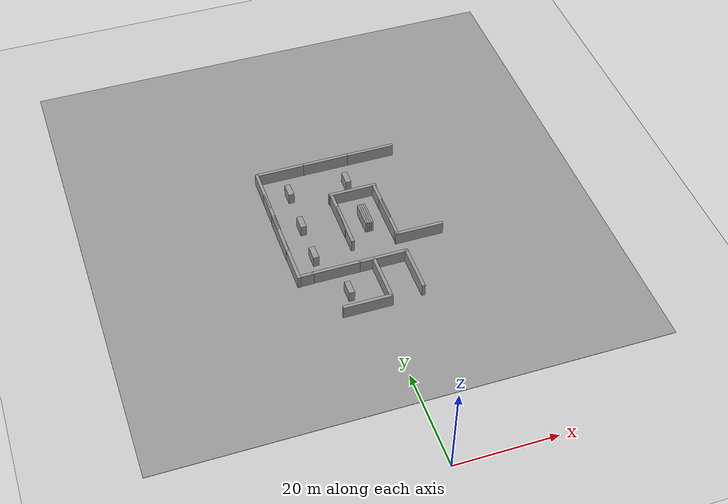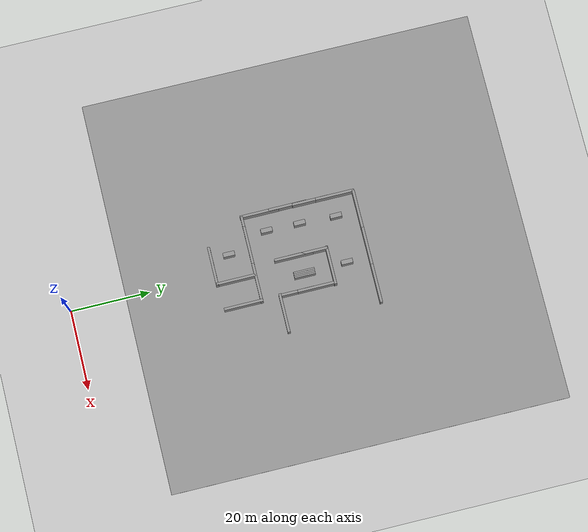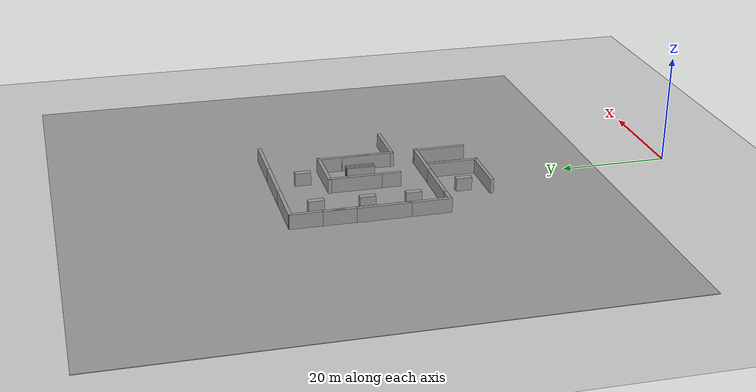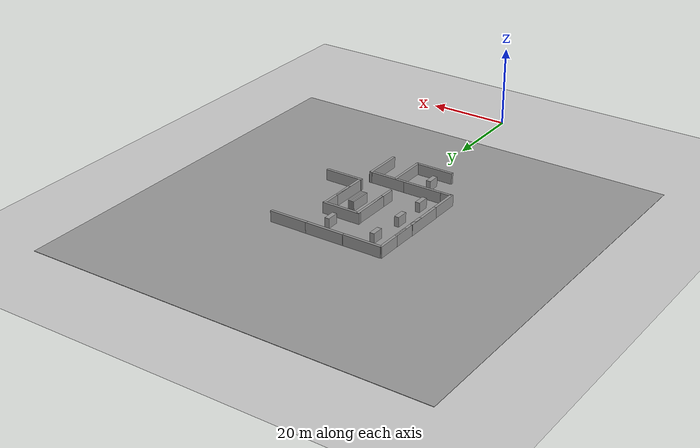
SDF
<sdf version="1.7">
 <world name="default">
  <model name="ground_plane">
   <static>1</static>
   <link name="link">
    <collision name="collision">
     <geometry><plane><normal>0 0 1</normal><size>100 100</size></plane></geometry>
     <surface><friction><ode><mu>100</mu><mu2>50</mu2></ode></friction></surface>
    </collision>
    <visual name="visual">
     <cast_shadows>0</cast_shadows>
     <geometry><plane><normal>0 0 1</normal><size>100 100</size></plane></geometry>
     <material>
      <script><uri>file://media/materials/scripts/gazebo.material</uri><name>Gazebo/Grey</name></script>
     </material>
    </visual>
   </link>
  </model>
  <model name="ground_plane_1">
   <static>1</static>
   <link name="link">
    <collision name="collision">
     <geometry><plane><normal>0 0 1</normal><size>100 100</size></plane></geometry>
     <surface>
      <contact><collide_bitmask>65535</collide_bitmask></contact>
      <friction><ode><mu>100</mu><mu2>50</mu2></ode></friction>
     </surface>
    </collision>
    <visual name="visual">
     <cast_shadows>0</cast_shadows>
     <geometry><plane><normal>0 0 1</normal><size>100 100</size></plane></geometry>
     <material>
      <script><uri>file://media/materials/scripts/gazebo.material</uri><name>Gazebo/Grey</name></script>
     </material>
    </visual>
   </link>
   <pose>-0.115157 63.9735 0 0 -0 0</pose>
  </model>
  <model name="grey_wall_hou_clone_clone_3_clone_0_clone_1_clone">
   <link name="link">
    <pose>0 0 1.37589 0 -0 0</pose>
    <inertial>
     <inertia><ixx>0</ixx><ixy>0</ixy><ixz>0</ixz><iyy>0</iyy><iyz>0</iyz><izz>0</izz></inertia>
     <mass>0</mass>
    </inertial>
    <visual name="visual">
     <cast_shadows>0</cast_shadows>
     <geometry><box><size>9.82221 0.642976 2.8</size></box></geometry>
     <material>
      <script>
       <uri>model://grey_wall/materials/scripts</uri>
       <uri>model://grey_wall/materials/textures</uri>
       <name>vrc/grey_wall</name>
      </script>
      <shader type="pixel"><normal_map>__default__</normal_map></shader>
      <ambient>1 1 1 1</ambient>
      <diffuse>1 1 1 1</diffuse>
      <specular>0 0 0 1</specular>
      <emissive>0 0 0 1</emissive>
     </material>
    </visual>
    <collision name="collision">
     <geometry><box><size>9.82221 0.642976 2.8</size></box></geometry>
     <surface>
      <friction>
       <ode><mu>1</mu><mu2>1</mu2><fdir1>0 0 0</fdir1><slip1>0</slip1><slip2>0</slip2></ode>
       <torsional>
        <coefficient>1</coefficient>
        <patch_radius>0</patch_radius>
        <surface_radius>0</surface_radius>
        <use_patch_radius>1</use_patch_radius>
        <ode><slip>0</slip></ode>
       </torsional>
      </friction>
      <bounce><restitution_coefficient>0</restitution_coefficient><threshold>1e+06</threshold></bounce>
      <contact>
       <collide_without_contact>0</collide_without_contact>
       <collide_without_contact_bitmask>1</collide_without_contact_bitmask>
       <collide_bitmask>1</collide_bitmask>
       <ode>
        <soft_cfm>0</soft_cfm>
        <soft_erp>0.2</soft_erp>
        <kp>1e+13</kp>
        <kd>1</kd>
        <max_vel>0.01</max_vel>
        <min_depth>0</min_depth>
       </ode>
       <bullet>
        <split_impulse>1</split_impulse>
        <split_impulse_penetration_threshold>-0.01</split_impulse_penetration_threshold>
        <soft_cfm>0</soft_cfm>
        <soft_erp>0.2</soft_erp>
        <kp>1e+13</kp>
        <kd>1</kd>
       </bullet>
      </contact>
     </surface>
    </collision>
   </link>
   <static>1</static>
   <pose>-0.06228 60.209 0 0 0 -1.56855</pose>
  </model>
  <model name="grey_wall_hou_clone_clone_0_clone_1">
   <link name="link">
    <pose>0 0 1.37589 0 -0 0</pose>
    <inertial>
     <inertia><ixx>0</ixx><ixy>0</ixy><ixz>0</ixz><iyy>0</iyy><iyz>0</iyz><izz>0</izz></inertia>
     <mass>0</mass>
    </inertial>
    <visual name="visual">
     <cast_shadows>0</cast_shadows>
     <geometry><box><size>9.82221 0.642976 2.8</size></box></geometry>
     <material>
      <script>
       <uri>model://grey_wall/materials/scripts</uri>
       <uri>model://grey_wall/materials/textures</uri>
       <name>vrc/grey_wall</name>
      </script>
      <shader type="pixel"><normal_map>__default__</normal_map></shader>
      <ambient>1 1 1 1</ambient>
      <diffuse>1 1 1 1</diffuse>
      <specular>0 0 0 1</specular>
      <emissive>0 0 0 1</emissive>
     </material>
    </visual>
    <collision name="collision">
     <geometry><box><size>9.82221 0.642976 2.8</size></box></geometry>
     <surface>
      <friction>
       <ode><mu>1</mu><mu2>1</mu2><fdir1>0 0 0</fdir1><slip1>0</slip1><slip2>0</slip2></ode>
       <torsional>
        <coefficient>1</coefficient>
        <patch_radius>0</patch_radius>
        <surface_radius>0</surface_radius>
        <use_patch_radius>1</use_patch_radius>
        <ode><slip>0</slip></ode>
       </torsional>
      </friction>
      <bounce><restitution_coefficient>0</restitution_coefficient><threshold>1e+06</threshold></bounce>
      <contact>
       <collide_without_contact>0</collide_without_contact>
       <collide_without_contact_bitmask>1</collide_without_contact_bitmask>
       <collide_bitmask>1</collide_bitmask>
       <ode>
        <soft_cfm>0</soft_cfm>
        <soft_erp>0.2</soft_erp>
        <kp>1e+13</kp>
        <kd>1</kd>
        <max_vel>0.01</max_vel>
        <min_depth>0</min_depth>
       </ode>
       <bullet>
        <split_impulse>1</split_impulse>
        <split_impulse_penetration_threshold>-0.01</split_impulse_penetration_threshold>
        <soft_cfm>0</soft_cfm>
        <soft_erp>0.2</soft_erp>
        <kp>1e+13</kp>
        <kd>1</kd>
       </bullet>
      </contact>
     </surface>
    </collision>
   </link>
   <static>1</static>
   <pose>8.93321 41.7664 0 0 0 -1.56855</pose>
  </model>
  <model name="grey_wall_hou_clone_clone_clone_4_clone_clone_clone">
   <link name="link">
    <pose>0 0 1.37589 0 -0 0</pose>
    <inertial>
     <inertia><ixx>0</ixx><ixy>0</ixy><ixz>0</ixz><iyy>0</iyy><iyz>0</iyz><izz>0</izz></inertia>
     <mass>0</mass>
    </inertial>
    <visual name="visual">
     <cast_shadows>0</cast_shadows>
     <geometry><box><size>9.82221 0.642976 2.8</size></box></geometry>
     <material>
      <script>
       <uri>model://grey_wall/materials/scripts</uri>
       <uri>model://grey_wall/materials/textures</uri>
       <name>vrc/grey_wall</name>
      </script>
      <shader type="pixel"><normal_map>__default__</normal_map></shader>
      <ambient>1 1 1 1</ambient>
      <diffuse>1 1 1 1</diffuse>
      <specular>0 0 0 1</specular>
      <emissive>0 0 0 1</emissive>
     </material>
    </visual>
    <collision name="collision">
     <geometry><box><size>9.82221 0.642976 2.8</size></box></geometry>
     <surface>
      <friction>
       <ode><mu>1</mu><mu2>1</mu2><fdir1>0 0 0</fdir1><slip1>0</slip1><slip2>0</slip2></ode>
       <torsional>
        <coefficient>1</coefficient>
        <patch_radius>0</patch_radius>
        <surface_radius>0</surface_radius>
        <use_patch_radius>1</use_patch_radius>
        <ode><slip>0</slip></ode>
       </torsional>
      </friction>
      <bounce><restitution_coefficient>0</restitution_coefficient><threshold>1e+06</threshold></bounce>
      <contact>
       <collide_without_contact>0</collide_without_contact>
       <collide_without_contact_bitmask>1</collide_without_contact_bitmask>
       <collide_bitmask>1</collide_bitmask>
       <ode>
        <soft_cfm>0</soft_cfm>
        <soft_erp>0.2</soft_erp>
        <kp>1e+13</kp>
        <kd>1</kd>
        <max_vel>0.01</max_vel>
        <min_depth>0</min_depth>
       </ode>
       <bullet>
        <split_impulse>1</split_impulse>
        <split_impulse_penetration_threshold>-0.01</split_impulse_penetration_threshold>
        <soft_cfm>0</soft_cfm>
        <soft_erp>0.2</soft_erp>
        <kp>1e+13</kp>
        <kd>1</kd>
       </bullet>
      </contact>
     </surface>
    </collision>
   </link>
   <static>1</static>
   <pose>4.39249 46.339 0 0 -0 0</pose>
  </model>
  <model name="grey_wall_hou_clone_clone_clone_4_clone_clone_clone_0">
   <link name="link">
    <pose>0 0 1.37589 0 -0 0</pose>
    <inertial>
     <inertia><ixx>0</ixx><ixy>0</ixy><ixz>0</ixz><iyy>0</iyy><iyz>0</iyz><izz>0</izz></inertia>
     <mass>0</mass>
    </inertial>
    <visual name="visual">
     <cast_shadows>0</cast_shadows>
     <geometry><box><size>9.82221 0.642976 2.8</size></box></geometry>
     <material>
      <script>
       <uri>model://grey_wall/materials/scripts</uri>
       <uri>model://grey_wall/materials/textures</uri>
       <name>vrc/grey_wall</name>
      </script>
      <shader type="pixel"><normal_map>__default__</normal_map></shader>
      <ambient>1 1 1 1</ambient>
      <diffuse>1 1 1 1</diffuse>
      <specular>0 0 0 1</specular>
      <emissive>0 0 0 1</emissive>
     </material>
    </visual>
    <collision name="collision">
     <geometry><box><size>9.82221 0.642976 2.8</size></box></geometry>
     <surface>
      <friction>
       <ode><mu>1</mu><mu2>1</mu2><fdir1>0 0 0</fdir1><slip1>0</slip1><slip2>0</slip2></ode>
       <torsional>
        <coefficient>1</coefficient>
        <patch_radius>0</patch_radius>
        <surface_radius>0</surface_radius>
        <use_patch_radius>1</use_patch_radius>
        <ode><slip>0</slip></ode>
       </torsional>
      </friction>
      <bounce><restitution_coefficient>0</restitution_coefficient><threshold>1e+06</threshold></bounce>
      <contact>
       <collide_without_contact>0</collide_without_contact>
       <collide_without_contact_bitmask>1</collide_without_contact_bitmask>
       <collide_bitmask>1</collide_bitmask>
       <ode>
        <soft_cfm>0</soft_cfm>
        <soft_erp>0.2</soft_erp>
        <kp>1e+13</kp>
        <kd>1</kd>
        <max_vel>0.01</max_vel>
        <min_depth>0</min_depth>
       </ode>
       <bullet>
        <split_impulse>1</split_impulse>
        <split_impulse_penetration_threshold>-0.01</split_impulse_penetration_threshold>
        <soft_cfm>0</soft_cfm>
        <soft_erp>0.2</soft_erp>
        <kp>1e+13</kp>
        <kd>1</kd>
       </bullet>
      </contact>
     </surface>
    </collision>
   </link>
   <static>1</static>
   <pose>-7.74432 74.7859 0 0 -0 0</pose>
  </model>
  <model name="grey_wall_hou_clone_clone_clone_4_clone_clone_0_clone_3_clone">
   <link name="link">
    <pose>0 0 1.37589 0 -0 0</pose>
    <inertial>
     <inertia><ixx>0</ixx><ixy>0</ixy><ixz>0</ixz><iyy>0</iyy><iyz>0</iyz><izz>0</izz></inertia>
     <mass>0</mass>
    </inertial>
    <visual name="visual">
     <cast_shadows>0</cast_shadows>
     <geometry><box><size>9.82221 0.642976 2.8</size></box></geometry>
     <material>
      <script>
       <uri>model://grey_wall/materials/scripts</uri>
       <uri>model://grey_wall/materials/textures</uri>
       <name>vrc/grey_wall</name>
      </script>
      <shader type="pixel"><normal_map>__default__</normal_map></shader>
      <ambient>1 1 1 1</ambient>
      <diffuse>1 1 1 1</diffuse>
      <specular>0 0 0 1</specular>
      <emissive>0 0 0 1</emissive>
     </material>
    </visual>
    <collision name="collision">
     <geometry><box><size>9.82221 0.642976 2.8</size></box></geometry>
     <surface>
      <friction>
       <ode><mu>1</mu><mu2>1</mu2><fdir1>0 0 0</fdir1><slip1>0</slip1><slip2>0</slip2></ode>
       <torsional>
        <coefficient>1</coefficient>
        <patch_radius>0</patch_radius>
        <surface_radius>0</surface_radius>
        <use_patch_radius>1</use_patch_radius>
        <ode><slip>0</slip></ode>
       </torsional>
      </friction>
      <bounce><restitution_coefficient>0</restitution_coefficient><threshold>1e+06</threshold></bounce>
      <contact>
       <collide_without_contact>0</collide_without_contact>
       <collide_without_contact_bitmask>1</collide_without_contact_bitmask>
       <collide_bitmask>1</collide_bitmask>
       <ode>
        <soft_cfm>0</soft_cfm>
        <soft_erp>0.2</soft_erp>
        <kp>1e+13</kp>
        <kd>1</kd>
        <max_vel>0.01</max_vel>
        <min_depth>0</min_depth>
       </ode>
       <bullet>
        <split_impulse>1</split_impulse>
        <split_impulse_penetration_threshold>-0.01</split_impulse_penetration_threshold>
        <soft_cfm>0</soft_cfm>
        <soft_erp>0.2</soft_erp>
        <kp>1e+13</kp>
        <kd>1</kd>
       </bullet>
      </contact>
     </surface>
    </collision>
   </link>
   <static>1</static>
   <pose>-5.13766 46.3635 0 0 -0 0</pose>
  </model>
  <model name="grey_wall_hou_clone_clone_3_clone_5_clone">
   <link name="link">
    <pose>0 0 1.37589 0 -0 0</pose>
    <inertial>
     <inertia><ixx>0</ixx><ixy>0</ixy><ixz>0</ixz><iyy>0</iyy><iyz>0</iyz><izz>0</izz></inertia>
     <mass>0</mass>
    </inertial>
    <visual name="visual">
     <cast_shadows>0</cast_shadows>
     <geometry><box><size>9.82221 0.642976 2.8</size></box></geometry>
     <material>
      <script>
       <uri>model://grey_wall/materials/scripts</uri>
       <uri>model://grey_wall/materials/textures</uri>
       <name>vrc/grey_wall</name>
      </script>
      <shader type="pixel"><normal_map>__default__</normal_map></shader>
      <ambient>1 1 1 1</ambient>
      <diffuse>1 1 1 1</diffuse>
      <specular>0 0 0 1</specular>
      <emissive>0 0 0 1</emissive>
     </material>
    </visual>
    <collision name="collision">
     <geometry><box><size>9.82221 0.642976 2.8</size></box></geometry>
     <surface>
      <friction>
       <ode><mu>1</mu><mu2>1</mu2><fdir1>0 0 0</fdir1><slip1>0</slip1><slip2>0</slip2></ode>
       <torsional>
        <coefficient>1</coefficient>
        <patch_radius>0</patch_radius>
        <surface_radius>0</surface_radius>
        <use_patch_radius>1</use_patch_radius>
        <ode><slip>0</slip></ode>
       </torsional>
      </friction>
      <bounce><restitution_coefficient>0</restitution_coefficient><threshold>1e+06</threshold></bounce>
      <contact>
       <collide_without_contact>0</collide_without_contact>
       <collide_without_contact_bitmask>1</collide_without_contact_bitmask>
       <collide_bitmask>1</collide_bitmask>
       <ode>
        <soft_cfm>0</soft_cfm>
        <soft_erp>0.2</soft_erp>
        <kp>1e+13</kp>
        <kd>1</kd>
        <max_vel>0.01</max_vel>
        <min_depth>0</min_depth>
       </ode>
       <bullet>
        <split_impulse>1</split_impulse>
        <split_impulse_penetration_threshold>-0.01</split_impulse_penetration_threshold>
        <soft_cfm>0</soft_cfm>
        <soft_erp>0.2</soft_erp>
        <kp>1e+13</kp>
        <kd>1</kd>
       </bullet>
      </contact>
     </surface>
    </collision>
   </link>
   <static>1</static>
   <pose>2.36653 41.3889 0 0 0 -1.56855</pose>
  </model>
  <model name="unit_box_clone_2_clone_0_clone_1_clone_3">
   <pose>-4.29083 41.1362 1.23849 1e-06 -1e-06 -0.000555</pose>
   <link name="link">
    <inertial>
     <mass>1</mass>
     <inertia>
      <ixx>0.166667</ixx>
      <ixy>0</ixy>
      <ixz>0</ixz>
      <iyy>0.166667</iyy>
      <iyz>0</iyz>
      <izz>0.166667</izz>
     </inertia>
    </inertial>
    <collision name="collision"><geometry><box><size>1.12952 2.91492 2.47699</size></box></geometry></collision>
    <visual name="visual">
     <geometry><box><size>1.12952 2.91492 2.47699</size></box></geometry>
     <material>
      <script><name>Gazebo/Grey</name><uri>file://media/materials/scripts/gazebo.material</uri></script>
     </material>
    </visual>
   </link>
  </model>
  <model name="grey_wall_hou_clone_clone_3_clone_0_clone_1_clone_0_clone_0">
   <link name="link">
    <pose>0 0 1.37589 0 -0 0</pose>
    <inertial>
     <inertia><ixx>0</ixx><ixy>0</ixy><ixz>0</ixz><iyy>0</iyy><iyz>0</iyz><izz>0</izz></inertia>
     <mass>0</mass>
    </inertial>
    <visual name="visual">
     <cast_shadows>0</cast_shadows>
     <geometry><box><size>9.82221 0.642976 2.8</size></box></geometry>
     <material>
      <script>
       <uri>model://grey_wall/materials/scripts</uri>
       <uri>model://grey_wall/materials/textures</uri>
       <name>vrc/grey_wall</name>
      </script>
      <shader type="pixel"><normal_map>__default__</normal_map></shader>
      <ambient>1 1 1 1</ambient>
      <diffuse>1 1 1 1</diffuse>
      <specular>0 0 0 1</specular>
      <emissive>0 0 0 1</emissive>
     </material>
    </visual>
    <collision name="collision">
     <geometry><box><size>9.82221 0.642976 2.8</size></box></geometry>
     <surface>
      <friction>
       <ode><mu>1</mu><mu2>1</mu2><fdir1>0 0 0</fdir1><slip1>0</slip1><slip2>0</slip2></ode>
       <torsional>
        <coefficient>1</coefficient>
        <patch_radius>0</patch_radius>
        <surface_radius>0</surface_radius>
        <use_patch_radius>1</use_patch_radius>
        <ode><slip>0</slip></ode>
       </torsional>
      </friction>
      <bounce><restitution_coefficient>0</restitution_coefficient><threshold>1e+06</threshold></bounce>
      <contact>
       <collide_without_contact>0</collide_without_contact>
       <collide_without_contact_bitmask>1</collide_without_contact_bitmask>
       <collide_bitmask>1</collide_bitmask>
       <ode>
        <soft_cfm>0</soft_cfm>
        <soft_erp>0.2</soft_erp>
        <kp>1e+13</kp>
        <kd>1</kd>
        <max_vel>0.01</max_vel>
        <min_depth>0</min_depth>
       </ode>
       <bullet>
        <split_impulse>1</split_impulse>
        <split_impulse_penetration_threshold>-0.01</split_impulse_penetration_threshold>
        <soft_cfm>0</soft_cfm>
        <soft_erp>0.2</soft_erp>
        <kp>1e+13</kp>
        <kd>1</kd>
       </bullet>
      </contact>
     </surface>
    </collision>
   </link>
   <static>1</static>
   <pose>-12.6279 64.1583 0 0 0 -1.56855</pose>
  </model>
  <model name="grey_wall_hou_clone_clone_3_clone_0_clone_1_clone_0_clone_1">
   <link name="link">
    <pose>0 0 1.37589 0 -0 0</pose>
    <inertial>
     <inertia><ixx>0</ixx><ixy>0</ixy><ixz>0</ixz><iyy>0</iyy><iyz>0</iyz><izz>0</izz></inertia>
     <mass>0</mass>
    </inertial>
    <visual name="visual">
     <cast_shadows>0</cast_shadows>
     <geometry><box><size>9.82221 0.642976 2.8</size></box></geometry>
     <material>
      <script>
       <uri>model://grey_wall/materials/scripts</uri>
       <uri>model://grey_wall/materials/textures</uri>
       <name>vrc/grey_wall</name>
      </script>
      <shader type="pixel"><normal_map>__default__</normal_map></shader>
      <ambient>1 1 1 1</ambient>
      <diffuse>1 1 1 1</diffuse>
      <specular>0 0 0 1</specular>
      <emissive>0 0 0 1</emissive>
     </material>
    </visual>
    <collision name="collision">
     <geometry><box><size>9.82221 0.642976 2.8</size></box></geometry>
     <surface>
      <friction>
       <ode><mu>1</mu><mu2>1</mu2><fdir1>0 0 0</fdir1><slip1>0</slip1><slip2>0</slip2></ode>
       <torsional>
        <coefficient>1</coefficient>
        <patch_radius>0</patch_radius>
        <surface_radius>0</surface_radius>
        <use_patch_radius>1</use_patch_radius>
        <ode><slip>0</slip></ode>
       </torsional>
      </friction>
      <bounce><restitution_coefficient>0</restitution_coefficient><threshold>1e+06</threshold></bounce>
      <contact>
       <collide_without_contact>0</collide_without_contact>
       <collide_without_contact_bitmask>1</collide_without_contact_bitmask>
       <collide_bitmask>1</collide_bitmask>
       <ode>
        <soft_cfm>0</soft_cfm>
        <soft_erp>0.2</soft_erp>
        <kp>1e+13</kp>
        <kd>1</kd>
        <max_vel>0.01</max_vel>
        <min_depth>0</min_depth>
       </ode>
       <bullet>
        <split_impulse>1</split_impulse>
        <split_impulse_penetration_threshold>-0.01</split_impulse_penetration_threshold>
        <soft_cfm>0</soft_cfm>
        <soft_erp>0.2</soft_erp>
        <kp>1e+13</kp>
        <kd>1</kd>
       </bullet>
      </contact>
     </surface>
    </collision>
   </link>
   <static>1</static>
   <pose>-12.6258 70.0961 0 0 0 -1.56855</pose>
  </model>
  <model name="grey_wall_hou_clone_clone_3_clone_0_clone_1_clone_0_clone_2">
   <link name="link">
    <pose>0 0 1.37589 0 -0 0</pose>
    <inertial>
     <inertia><ixx>0</ixx><ixy>0</ixy><ixz>0</ixz><iyy>0</iyy><iyz>0</iyz><izz>0</izz></inertia>
     <mass>0</mass>
    </inertial>
    <visual name="visual">
     <cast_shadows>0</cast_shadows>
     <geometry><box><size>9.82221 0.642976 2.8</size></box></geometry>
     <material>
      <script>
       <uri>model://grey_wall/materials/scripts</uri>
       <uri>model://grey_wall/materials/textures</uri>
       <name>vrc/grey_wall</name>
      </script>
      <shader type="pixel"><normal_map>__default__</normal_map></shader>
      <ambient>1 1 1 1</ambient>
      <diffuse>1 1 1 1</diffuse>
      <specular>0 0 0 1</specular>
      <emissive>0 0 0 1</emissive>
     </material>
    </visual>
    <collision name="collision">
     <geometry><box><size>9.82221 0.642976 2.8</size></box></geometry>
     <surface>
      <friction>
       <ode><mu>1</mu><mu2>1</mu2><fdir1>0 0 0</fdir1><slip1>0</slip1><slip2>0</slip2></ode>
       <torsional>
        <coefficient>1</coefficient>
        <patch_radius>0</patch_radius>
        <surface_radius>0</surface_radius>
        <use_patch_radius>1</use_patch_radius>
        <ode><slip>0</slip></ode>
       </torsional>
      </friction>
      <bounce><restitution_coefficient>0</restitution_coefficient><threshold>1e+06</threshold></bounce>
      <contact>
       <collide_without_contact>0</collide_without_contact>
       <collide_without_contact_bitmask>1</collide_without_contact_bitmask>
       <collide_bitmask>1</collide_bitmask>
       <ode>
        <soft_cfm>0</soft_cfm>
        <soft_erp>0.2</soft_erp>
        <kp>1e+13</kp>
        <kd>1</kd>
        <max_vel>0.01</max_vel>
        <min_depth>0</min_depth>
       </ode>
       <bullet>
        <split_impulse>1</split_impulse>
        <split_impulse_penetration_threshold>-0.01</split_impulse_penetration_threshold>
        <soft_cfm>0</soft_cfm>
        <soft_erp>0.2</soft_erp>
        <kp>1e+13</kp>
        <kd>1</kd>
       </bullet>
      </contact>
     </surface>
    </collision>
   </link>
   <static>1</static>
   <pose>8.83379 60.3561 0 0 0 -1.56855</pose>
  </model>
  <model name="grey_wall_hou_clone_clone_3_clone_0_clone_1_clone_0_clone_3">
   <link name="link">
    <pose>0 0 1.37589 0 -0 0</pose>
    <inertial>
     <inertia><ixx>0</ixx><ixy>0</ixy><ixz>0</ixz><iyy>0</iyy><iyz>0</iyz><izz>0</izz></inertia>
     <mass>0</mass>
    </inertial>
    <visual name="visual">
     <cast_shadows>0</cast_shadows>
     <geometry><box><size>9.82221 0.642976 2.8</size></box></geometry>
     <material>
      <script>
       <uri>model://grey_wall/materials/scripts</uri>
       <uri>model://grey_wall/materials/textures</uri>
       <name>vrc/grey_wall</name>
      </script>
      <shader type="pixel"><normal_map>__default__</normal_map></shader>
      <ambient>1 1 1 1</ambient>
      <diffuse>1 1 1 1</diffuse>
      <specular>0 0 0 1</specular>
      <emissive>0 0 0 1</emissive>
     </material>
    </visual>
    <collision name="collision">
     <geometry><box><size>9.82221 0.642976 2.8</size></box></geometry>
     <surface>
      <friction>
       <ode><mu>1</mu><mu2>1</mu2><fdir1>0 0 0</fdir1><slip1>0</slip1><slip2>0</slip2></ode>
       <torsional>
        <coefficient>1</coefficient>
        <patch_radius>0</patch_radius>
        <surface_radius>0</surface_radius>
        <use_patch_radius>1</use_patch_radius>
        <ode><slip>0</slip></ode>
       </torsional>
      </friction>
      <bounce><restitution_coefficient>0</restitution_coefficient><threshold>1e+06</threshold></bounce>
      <contact>
       <collide_without_contact>0</collide_without_contact>
       <collide_without_contact_bitmask>1</collide_without_contact_bitmask>
       <collide_bitmask>1</collide_bitmask>
       <ode>
        <soft_cfm>0</soft_cfm>
        <soft_erp>0.2</soft_erp>
        <kp>1e+13</kp>
        <kd>1</kd>
        <max_vel>0.01</max_vel>
        <min_depth>0</min_depth>
       </ode>
       <bullet>
        <split_impulse>1</split_impulse>
        <split_impulse_penetration_threshold>-0.01</split_impulse_penetration_threshold>
        <soft_cfm>0</soft_cfm>
        <soft_erp>0.2</soft_erp>
        <kp>1e+13</kp>
        <kd>1</kd>
       </bullet>
      </contact>
     </surface>
    </collision>
   </link>
   <static>1</static>
   <pose>-12.6316 50.8458 0 0 0 -1.56855</pose>
  </model>
  <model name="grey_wall_hou_clone_clone_clone_4_clone_clone_clone_0_clone_0">
   <link name="link">
    <pose>0 0 1.37589 0 -0 0</pose>
    <inertial>
     <inertia><ixx>0</ixx><ixy>0</ixy><ixz>0</ixz><iyy>0</iyy><iyz>0</iyz><izz>0</izz></inertia>
     <mass>0</mass>
    </inertial>
    <visual name="visual">
     <cast_shadows>0</cast_shadows>
     <geometry><box><size>9.82221 0.642976 2.8</size></box></geometry>
     <material>
      <script>
       <uri>model://grey_wall/materials/scripts</uri>
       <uri>model://grey_wall/materials/textures</uri>
       <name>vrc/grey_wall</name>
      </script>
      <shader type="pixel"><normal_map>__default__</normal_map></shader>
      <ambient>1 1 1 1</ambient>
      <diffuse>1 1 1 1</diffuse>
      <specular>0 0 0 1</specular>
      <emissive>0 0 0 1</emissive>
     </material>
    </visual>
    <collision name="collision">
     <geometry><box><size>9.82221 0.642976 2.8</size></box></geometry>
     <surface>
      <friction>
       <ode><mu>1</mu><mu2>1</mu2><fdir1>0 0 0</fdir1><slip1>0</slip1><slip2>0</slip2></ode>
       <torsional>
        <coefficient>1</coefficient>
        <patch_radius>0</patch_radius>
        <surface_radius>0</surface_radius>
        <use_patch_radius>1</use_patch_radius>
        <ode><slip>0</slip></ode>
       </torsional>
      </friction>
      <bounce><restitution_coefficient>0</restitution_coefficient><threshold>1e+06</threshold></bounce>
      <contact>
       <collide_without_contact>0</collide_without_contact>
       <collide_without_contact_bitmask>1</collide_without_contact_bitmask>
       <collide_bitmask>1</collide_bitmask>
       <ode>
        <soft_cfm>0</soft_cfm>
        <soft_erp>0.2</soft_erp>
        <kp>1e+13</kp>
        <kd>1</kd>
        <max_vel>0.01</max_vel>
        <min_depth>0</min_depth>
       </ode>
       <bullet>
        <split_impulse>1</split_impulse>
        <split_impulse_penetration_threshold>-0.01</split_impulse_penetration_threshold>
        <soft_cfm>0</soft_cfm>
        <soft_erp>0.2</soft_erp>
        <kp>1e+13</kp>
        <kd>1</kd>
       </bullet>
      </contact>
     </surface>
    </collision>
   </link>
   <static>1</static>
   <pose>1.94759 74.8061 0 0 -0 0</pose>
  </model>
  <model name="grey_wall_hou_clone_clone_clone_4_clone_clone_clone_0_clone_1">
   <link name="link">
    <pose>0 0 1.37589 0 -0 0</pose>
    <inertial>
     <inertia><ixx>0</ixx><ixy>0</ixy><ixz>0</ixz><iyy>0</iyy><iyz>0</iyz><izz>0</izz></inertia>
     <mass>0</mass>
    </inertial>
    <visual name="visual">
     <cast_shadows>0</cast_shadows>
     <geometry><box><size>9.82221 0.642976 2.8</size></box></geometry>
     <material>
      <script>
       <uri>model://grey_wall/materials/scripts</uri>
       <uri>model://grey_wall/materials/textures</uri>
       <name>vrc/grey_wall</name>
      </script>
      <shader type="pixel"><normal_map>__default__</normal_map></shader>
      <ambient>1 1 1 1</ambient>
      <diffuse>1 1 1 1</diffuse>
      <specular>0 0 0 1</specular>
      <emissive>0 0 0 1</emissive>
     </material>
    </visual>
    <collision name="collision">
     <geometry><box><size>9.82221 0.642976 2.8</size></box></geometry>
     <surface>
      <friction>
       <ode><mu>1</mu><mu2>1</mu2><fdir1>0 0 0</fdir1><slip1>0</slip1><slip2>0</slip2></ode>
       <torsional>
        <coefficient>1</coefficient>
        <patch_radius>0</patch_radius>
        <surface_radius>0</surface_radius>
        <use_patch_radius>1</use_patch_radius>
        <ode><slip>0</slip></ode>
       </torsional>
      </friction>
      <bounce><restitution_coefficient>0</restitution_coefficient><threshold>1e+06</threshold></bounce>
      <contact>
       <collide_without_contact>0</collide_without_contact>
       <collide_without_contact_bitmask>1</collide_without_contact_bitmask>
       <collide_bitmask>1</collide_bitmask>
       <ode>
        <soft_cfm>0</soft_cfm>
        <soft_erp>0.2</soft_erp>
        <kp>1e+13</kp>
        <kd>1</kd>
        <max_vel>0.01</max_vel>
        <min_depth>0</min_depth>
       </ode>
       <bullet>
        <split_impulse>1</split_impulse>
        <split_impulse_penetration_threshold>-0.01</split_impulse_penetration_threshold>
        <soft_cfm>0</soft_cfm>
        <soft_erp>0.2</soft_erp>
        <kp>1e+13</kp>
        <kd>1</kd>
       </bullet>
      </contact>
     </surface>
    </collision>
   </link>
   <static>1</static>
   <pose>11.4874 74.8034 0 0 -0 0</pose>
  </model>
  <model name="grey_wall_hou_clone_clone_clone_4_clone_clone_clone_0_clone_2">
   <link name="link">
    <pose>0 0 1.37589 0 -0 0</pose>
    <inertial>
     <inertia><ixx>0</ixx><ixy>0</ixy><ixz>0</ixz><iyy>0</iyy><iyz>0</iyz><izz>0</izz></inertia>
     <mass>0</mass>
    </inertial>
    <visual name="visual">
     <cast_shadows>0</cast_shadows>
     <geometry><box><size>9.82221 0.642976 2.8</size></box></geometry>
     <material>
      <script>
       <uri>model://grey_wall/materials/scripts</uri>
       <uri>model://grey_wall/materials/textures</uri>
       <name>vrc/grey_wall</name>
      </script>
      <shader type="pixel"><normal_map>__default__</normal_map></shader>
      <ambient>1 1 1 1</ambient>
      <diffuse>1 1 1 1</diffuse>
      <specular>0 0 0 1</specular>
      <emissive>0 0 0 1</emissive>
     </material>
    </visual>
    <collision name="collision">
     <geometry><box><size>9.82221 0.642976 2.8</size></box></geometry>
     <surface>
      <friction>
       <ode><mu>1</mu><mu2>1</mu2><fdir1>0 0 0</fdir1><slip1>0</slip1><slip2>0</slip2></ode>
       <torsional>
        <coefficient>1</coefficient>
        <patch_radius>0</patch_radius>
        <surface_radius>0</surface_radius>
        <use_patch_radius>1</use_patch_radius>
        <ode><slip>0</slip></ode>
       </torsional>
      </friction>
      <bounce><restitution_coefficient>0</restitution_coefficient><threshold>1e+06</threshold></bounce>
      <contact>
       <collide_without_contact>0</collide_without_contact>
       <collide_without_contact_bitmask>1</collide_without_contact_bitmask>
       <collide_bitmask>1</collide_bitmask>
       <ode>
        <soft_cfm>0</soft_cfm>
        <soft_erp>0.2</soft_erp>
        <kp>1e+13</kp>
        <kd>1</kd>
        <max_vel>0.01</max_vel>
        <min_depth>0</min_depth>
       </ode>
       <bullet>
        <split_impulse>1</split_impulse>
        <split_impulse_penetration_threshold>-0.01</split_impulse_penetration_threshold>
        <soft_cfm>0</soft_cfm>
        <soft_erp>0.2</soft_erp>
        <kp>1e+13</kp>
        <kd>1</kd>
       </bullet>
      </contact>
     </surface>
    </collision>
   </link>
   <static>1</static>
   <pose>4.39315 64.9818 0 0 -0 0</pose>
  </model>
  <model name="grey_wall_hou_clone_clone_clone_4_clone_clone_clone_clone_1_clone">
   <link name="link">
    <pose>0 0 1.37589 0 -0 0</pose>
    <inertial>
     <inertia><ixx>0</ixx><ixy>0</ixy><ixz>0</ixz><iyy>0</iyy><iyz>0</iyz><izz>0</izz></inertia>
     <mass>0</mass>
    </inertial>
    <visual name="visual">
     <cast_shadows>0</cast_shadows>
     <geometry><box><size>9.82221 0.642976 2.8</size></box></geometry>
     <material>
      <script>
       <uri>model://grey_wall/materials/scripts</uri>
       <uri>model://grey_wall/materials/textures</uri>
       <name>vrc/grey_wall</name>
      </script>
      <shader type="pixel"><normal_map>__default__</normal_map></shader>
      <ambient>1 1 1 1</ambient>
      <diffuse>1 1 1 1</diffuse>
      <specular>0 0 0 1</specular>
      <emissive>0 0 0 1</emissive>
     </material>
    </visual>
    <collision name="collision">
     <geometry><box><size>9.82221 0.642976 2.8</size></box></geometry>
     <surface>
      <friction>
       <ode><mu>1</mu><mu2>1</mu2><fdir1>0 0 0</fdir1><slip1>0</slip1><slip2>0</slip2></ode>
       <torsional>
        <coefficient>1</coefficient>
        <patch_radius>0</patch_radius>
        <surface_radius>0</surface_radius>
        <use_patch_radius>1</use_patch_radius>
        <ode><slip>0</slip></ode>
       </torsional>
      </friction>
      <bounce><restitution_coefficient>0</restitution_coefficient><threshold>1e+06</threshold></bounce>
      <contact>
       <collide_without_contact>0</collide_without_contact>
       <collide_without_contact_bitmask>1</collide_without_contact_bitmask>
       <collide_bitmask>1</collide_bitmask>
       <ode>
        <soft_cfm>0</soft_cfm>
        <soft_erp>0.2</soft_erp>
        <kp>1e+13</kp>
        <kd>1</kd>
        <max_vel>0.01</max_vel>
        <min_depth>0</min_depth>
       </ode>
       <bullet>
        <split_impulse>1</split_impulse>
        <split_impulse_penetration_threshold>-0.01</split_impulse_penetration_threshold>
        <soft_cfm>0</soft_cfm>
        <soft_erp>0.2</soft_erp>
        <kp>1e+13</kp>
        <kd>1</kd>
       </bullet>
      </contact>
     </surface>
    </collision>
   </link>
   <static>1</static>
   <pose>-2.18954 36.6329 0 0 -0 0</pose>
  </model>
  <model name="grey_wall_short_clone_clone">
   <link name="link">
    <pose>0 0 1.37589 0 -0 0</pose>
    <inertial>
     <inertia><ixx>0</ixx><ixy>0</ixy><ixz>0</ixz><iyy>0</iyy><iyz>0</iyz><izz>0</izz></inertia>
     <mass>0</mass>
    </inertial>
    <visual name="visual">
     <cast_shadows>0</cast_shadows>
     <geometry><box><size>3.01651 0.642976 2.8</size></box></geometry>
     <material>
      <script>
       <uri>model://grey_wall/materials/scripts</uri>
       <uri>model://grey_wall/materials/textures</uri>
       <name>vrc/grey_wall</name>
      </script>
      <shader type="pixel"><normal_map>__default__</normal_map></shader>
      <ambient>1 1 1 1</ambient>
      <diffuse>1 1 1 1</diffuse>
      <specular>0 0 0 1</specular>
      <emissive>0 0 0 1</emissive>
     </material>
    </visual>
    <collision name="collision">
     <geometry><box><size>3.01651 0.642976 2.8</size></box></geometry>
     <surface>
      <friction>
       <ode><mu>1</mu><mu2>1</mu2><fdir1>0 0 0</fdir1><slip1>0</slip1><slip2>0</slip2></ode>
       <torsional>
        <coefficient>1</coefficient>
        <patch_radius>0</patch_radius>
        <surface_radius>0</surface_radius>
        <use_patch_radius>1</use_patch_radius>
        <ode><slip>0</slip></ode>
       </torsional>
      </friction>
      <bounce><restitution_coefficient>0</restitution_coefficient><threshold>1e+06</threshold></bounce>
      <contact>
       <collide_without_contact>0</collide_without_contact>
       <collide_without_contact_bitmask>1</collide_without_contact_bitmask>
       <collide_bitmask>1</collide_bitmask>
       <ode>
        <soft_cfm>0</soft_cfm>
        <soft_erp>0.2</soft_erp>
        <kp>1e+13</kp>
        <kd>1</kd>
        <max_vel>0.01</max_vel>
        <min_depth>0</min_depth>
       </ode>
       <bullet>
        <split_impulse>1</split_impulse>
        <split_impulse_penetration_threshold>-0.01</split_impulse_penetration_threshold>
        <soft_cfm>0</soft_cfm>
        <soft_erp>0.2</soft_erp>
        <kp>1e+13</kp>
        <kd>1</kd>
       </bullet>
      </contact>
     </surface>
    </collision>
   </link>
   <static>1</static>
   <pose>-11.1512 46.3458 0 0 -0 0</pose>
  </model>
  <model name="unit_box_clone_2_clone_0_clone_1_clone_3_clone_0">
   <pose>-7.51486 69.1298 1.23849 -1e-06 -1e-06 0.00803</pose>
   <link name="link">
    <inertial>
     <mass>1</mass>
     <inertia>
      <ixx>0.166667</ixx>
      <ixy>0</ixy>
      <ixz>0</ixz>
      <iyy>0.166667</iyy>
      <iyz>0</iyz>
      <izz>0.166667</izz>
     </inertia>
    </inertial>
    <collision name="collision"><geometry><box><size>1.12952 2.91492 2.47699</size></box></geometry></collision>
    <visual name="visual">
     <geometry><box><size>1.12952 2.91492 2.47699</size></box></geometry>
     <material>
      <script><name>Gazebo/Grey</name><uri>file://media/materials/scripts/gazebo.material</uri></script>
     </material>
    </visual>
   </link>
  </model>
  <model name="unit_box_clone_2_clone_0_clone_1_clone_3_clone_1">
   <pose>-7.84064 59.9558 1.23849 -1e-06 -1e-06 0.002103</pose>
   <link name="link">
    <inertial>
     <mass>1</mass>
     <inertia>
      <ixx>0.166667</ixx>
      <ixy>0</ixy>
      <ixz>0</ixz>
      <iyy>0.166667</iyy>
      <iyz>0</iyz>
      <izz>0.166667</izz>
     </inertia>
    </inertial>
    <collision name="collision"><geometry><box><size>1.12952 2.91492 2.47699</size></box></geometry></collision>
    <visual name="visual">
     <geometry><box><size>1.12952 2.91492 2.47699</size></box></geometry>
     <material>
      <script><name>Gazebo/Grey</name><uri>file://media/materials/scripts/gazebo.material</uri></script>
     </material>
    </visual>
   </link>
  </model>
  <model name="unit_box_clone_2_clone_0_clone_1_clone_3_clone_2">
   <pose>-7.95802 51.5782 1.23849 1e-06 -1e-06 0.003618</pose>
   <link name="link">
    <inertial>
     <mass>1</mass>
     <inertia>
      <ixx>0.166667</ixx>
      <ixy>0</ixy>
      <ixz>0</ixz>
      <iyy>0.166667</iyy>
      <iyz>0</iyz>
      <izz>0.166667</izz>
     </inertia>
    </inertial>
    <collision name="collision"><geometry><box><size>1.12952 2.91492 2.47699</size></box></geometry></collision>
    <visual name="visual">
     <geometry><box><size>1.12952 2.91492 2.47699</size></box></geometry>
     <material>
      <script><name>Gazebo/Grey</name><uri>file://media/materials/scripts/gazebo.material</uri></script>
     </material>
    </visual>
   </link>
  </model>
  <model name="unit_box_clone_2_clone_0_clone_1_clone_3_clone_5">
   <pose>4.44406 69.01 1.23849 1e-06 -1e-06 -0.000557</pose>
   <link name="link">
    <inertial>
     <mass>1</mass>
     <inertia>
      <ixx>0.166667</ixx>
      <ixy>0</ixy>
      <ixz>0</ixz>
      <iyy>0.166667</iyy>
      <iyz>0</iyz>
      <izz>0.166667</izz>
     </inertia>
    </inertial>
    <collision name="collision"><geometry><box><size>1.12952 2.91492 2.47699</size></box></geometry></collision>
    <visual name="visual">
     <geometry><box><size>1.12952 2.91492 2.47699</size></box></geometry>
     <material>
      <script><name>Gazebo/Grey</name><uri>file://media/materials/scripts/gazebo.material</uri></script>
     </material>
    </visual>
   </link>
  </model>
  <model name="grey_wall_hou_clone_clone_3_clone_0_clone_1_clone_0_clone_2_clone">
   <link name="link">
    <pose>0 0 1.37589 0 -0 0</pose>
    <inertial>
     <inertia><ixx>0</ixx><ixy>0</ixy><ixz>0</ixz><iyy>0</iyy><iyz>0</iyz><izz>0</izz></inertia>
     <mass>0</mass>
    </inertial>
    <visual name="visual">
     <cast_shadows>0</cast_shadows>
     <geometry><box><size>9.82221 0.642976 2.8</size></box></geometry>
     <material>
      <script>
       <uri>model://grey_wall/materials/scripts</uri>
       <uri>model://grey_wall/materials/textures</uri>
       <name>vrc/grey_wall</name>
      </script>
      <shader type="pixel"><normal_map>__default__</normal_map></shader>
      <ambient>1 1 1 1</ambient>
      <diffuse>1 1 1 1</diffuse>
      <specular>0 0 0 1</specular>
      <emissive>0 0 0 1</emissive>
     </material>
    </visual>
    <collision name="collision">
     <geometry><box><size>9.82221 0.642976 2.8</size></box></geometry>
     <surface>
      <friction>
       <ode><mu>1</mu><mu2>1</mu2><fdir1>0 0 0</fdir1><slip1>0</slip1><slip2>0</slip2></ode>
       <torsional>
        <coefficient>1</coefficient>
        <patch_radius>0</patch_radius>
        <surface_radius>0</surface_radius>
        <use_patch_radius>1</use_patch_radius>
        <ode><slip>0</slip></ode>
       </torsional>
      </friction>
      <bounce><restitution_coefficient>0</restitution_coefficient><threshold>1e+06</threshold></bounce>
      <contact>
       <collide_without_contact>0</collide_without_contact>
       <collide_without_contact_bitmask>1</collide_without_contact_bitmask>
       <collide_bitmask>1</collide_bitmask>
       <ode>
        <soft_cfm>0</soft_cfm>
        <soft_erp>0.2</soft_erp>
        <kp>1e+13</kp>
        <kd>1</kd>
        <max_vel>0.01</max_vel>
        <min_depth>0</min_depth>
       </ode>
       <bullet>
        <split_impulse>1</split_impulse>
        <split_impulse_penetration_threshold>-0.01</split_impulse_penetration_threshold>
        <soft_cfm>0</soft_cfm>
        <soft_erp>0.2</soft_erp>
        <kp>1e+13</kp>
        <kd>1</kd>
       </bullet>
      </contact>
     </surface>
    </collision>
   </link>
   <static>1</static>
   <pose>8.83053 55.7325 0 0 0 -1.56855</pose>
  </model>
  <model name="grey_wall_hou_clone_clone_3_clone_0_clone_1_clone_0_clone_2_clone_0">
   <link name="link">
    <pose>0 0 1.37589 0 -0 0</pose>
    <inertial>
     <inertia><ixx>0</ixx><ixy>0</ixy><ixz>0</ixz><iyy>0</iyy><iyz>0</iyz><izz>0</izz></inertia>
     <mass>0</mass>
    </inertial>
    <visual name="visual">
     <cast_shadows>0</cast_shadows>
     <geometry><box><size>9.82221 0.642976 2.8</size></box></geometry>
     <material>
      <script>
       <uri>model://grey_wall/materials/scripts</uri>
       <uri>model://grey_wall/materials/textures</uri>
       <name>vrc/grey_wall</name>
      </script>
      <shader type="pixel"><normal_map>__default__</normal_map></shader>
      <ambient>1 1 1 1</ambient>
      <diffuse>1 1 1 1</diffuse>
      <specular>0 0 0 1</specular>
      <emissive>0 0 0 1</emissive>
     </material>
    </visual>
    <collision name="collision">
     <geometry><box><size>9.82221 0.642976 2.8</size></box></geometry>
     <surface>
      <friction>
       <ode><mu>1</mu><mu2>1</mu2><fdir1>0 0 0</fdir1><slip1>0</slip1><slip2>0</slip2></ode>
       <torsional>
        <coefficient>1</coefficient>
        <patch_radius>0</patch_radius>
        <surface_radius>0</surface_radius>
        <use_patch_radius>1</use_patch_radius>
        <ode><slip>0</slip></ode>
       </torsional>
      </friction>
      <bounce><restitution_coefficient>0</restitution_coefficient><threshold>1e+06</threshold></bounce>
      <contact>
       <collide_without_contact>0</collide_without_contact>
       <collide_without_contact_bitmask>1</collide_without_contact_bitmask>
       <collide_bitmask>1</collide_bitmask>
       <ode>
        <soft_cfm>0</soft_cfm>
        <soft_erp>0.2</soft_erp>
        <kp>1e+13</kp>
        <kd>1</kd>
        <max_vel>0.01</max_vel>
        <min_depth>0</min_depth>
       </ode>
       <bullet>
        <split_impulse>1</split_impulse>
        <split_impulse_penetration_threshold>-0.01</split_impulse_penetration_threshold>
        <soft_cfm>0</soft_cfm>
        <soft_erp>0.2</soft_erp>
        <kp>1e+13</kp>
        <kd>1</kd>
       </bullet>
      </contact>
     </surface>
    </collision>
   </link>
   <static>1</static>
   <pose>-0.03275 56.5977 0 0 0 -1.56855</pose>
  </model>
  <model name="grey_wall_hou_clone_clone_3_clone_0_clone_1_clone_0_clone_clone_0">
   <link name="link">
    <pose>0 0 1.37589 0 -0 0</pose>
    <inertial>
     <inertia><ixx>0</ixx><ixy>0</ixy><ixz>0</ixz><iyy>0</iyy><iyz>0</iyz><izz>0</izz></inertia>
     <mass>0</mass>
    </inertial>
    <visual name="visual">
     <cast_shadows>0</cast_shadows>
     <geometry><box><size>9.82221 0.642976 2.8</size></box></geometry>
     <material>
      <script>
       <uri>model://grey_wall/materials/scripts</uri>
       <uri>model://grey_wall/materials/textures</uri>
       <name>vrc/grey_wall</name>
      </script>
      <shader type="pixel"><normal_map>__default__</normal_map></shader>
      <ambient>1 1 1 1</ambient>
      <diffuse>1 1 1 1</diffuse>
      <specular>0 0 0 1</specular>
      <emissive>0 0 0 1</emissive>
     </material>
    </visual>
    <collision name="collision">
     <geometry><box><size>9.82221 0.642976 2.8</size></box></geometry>
     <surface>
      <friction>
       <ode><mu>1</mu><mu2>1</mu2><fdir1>0 0 0</fdir1><slip1>0</slip1><slip2>0</slip2></ode>
       <torsional>
        <coefficient>1</coefficient>
        <patch_radius>0</patch_radius>
        <surface_radius>0</surface_radius>
        <use_patch_radius>1</use_patch_radius>
        <ode><slip>0</slip></ode>
       </torsional>
      </friction>
      <bounce><restitution_coefficient>0</restitution_coefficient><threshold>1e+06</threshold></bounce>
      <contact>
       <collide_without_contact>0</collide_without_contact>
       <collide_without_contact_bitmask>1</collide_without_contact_bitmask>
       <collide_bitmask>1</collide_bitmask>
       <ode>
        <soft_cfm>0</soft_cfm>
        <soft_erp>0.2</soft_erp>
        <kp>1e+13</kp>
        <kd>1</kd>
        <max_vel>0.01</max_vel>
        <min_depth>0</min_depth>
       </ode>
       <bullet>
        <split_impulse>1</split_impulse>
        <split_impulse_penetration_threshold>-0.01</split_impulse_penetration_threshold>
        <soft_cfm>0</soft_cfm>
        <soft_erp>0.2</soft_erp>
        <kp>1e+13</kp>
        <kd>1</kd>
       </bullet>
      </contact>
     </surface>
    </collision>
   </link>
   <static>1</static>
   <pose>-12.6964 58.1599 0 0 0 -1.56855</pose>
  </model>
  <model name="grey_wall_hou_clone_clone_clone_4_clone_clone_0_clone_clone">
   <link name="link">
    <pose>0 0 1.37589 0 -0 0</pose>
    <inertial>
     <inertia><ixx>0</ixx><ixy>0</ixy><ixz>0</ixz><iyy>0</iyy><iyz>0</iyz><izz>0</izz></inertia>
     <mass>0</mass>
    </inertial>
    <visual name="visual">
     <cast_shadows>0</cast_shadows>
     <geometry><box><size>9.82221 0.642976 2.8</size></box></geometry>
     <material>
      <script>
       <uri>model://grey_wall/materials/scripts</uri>
       <uri>model://grey_wall/materials/textures</uri>
       <name>vrc/grey_wall</name>
      </script>
      <shader type="pixel"><normal_map>__default__</normal_map></shader>
      <ambient>1 1 1 1</ambient>
      <diffuse>1 1 1 1</diffuse>
      <specular>0 0 0 1</specular>
      <emissive>0 0 0 1</emissive>
     </material>
    </visual>
    <collision name="collision">
     <geometry><box><size>9.82221 0.642976 2.8</size></box></geometry>
     <surface>
      <friction>
       <ode><mu>1</mu><mu2>1</mu2><fdir1>0 0 0</fdir1><slip1>0</slip1><slip2>0</slip2></ode>
       <torsional>
        <coefficient>1</coefficient>
        <patch_radius>0</patch_radius>
        <surface_radius>0</surface_radius>
        <use_patch_radius>1</use_patch_radius>
        <ode><slip>0</slip></ode>
       </torsional>
      </friction>
      <bounce><restitution_coefficient>0</restitution_coefficient><threshold>1e+06</threshold></bounce>
      <contact>
       <collide_without_contact>0</collide_without_contact>
       <collide_without_contact_bitmask>1</collide_without_contact_bitmask>
       <collide_bitmask>1</collide_bitmask>
       <ode>
        <soft_cfm>0</soft_cfm>
        <soft_erp>0.2</soft_erp>
        <kp>1e+13</kp>
        <kd>1</kd>
        <max_vel>0.01</max_vel>
        <min_depth>0</min_depth>
       </ode>
       <bullet>
        <split_impulse>1</split_impulse>
        <split_impulse_penetration_threshold>-0.01</split_impulse_penetration_threshold>
        <soft_cfm>0</soft_cfm>
        <soft_erp>0.2</soft_erp>
        <kp>1e+13</kp>
        <kd>1</kd>
       </bullet>
      </contact>
     </surface>
    </collision>
   </link>
   <static>1</static>
   <pose>13.3112 51.0163 0 0 -0 0</pose>
  </model>
  <model name="5m_0.4">
   <pose>3.13582 58.4028 0 0 -0 1.56835</pose>
   <link name="Wall_0">
    <collision name="Wall_0_Collision">
     <geometry><box><size>5.25 0.4 2.5</size></box></geometry>
     <pose>0 0 1.25 0 -0 0</pose>
    </collision>
    <visual name="Wall_0_Visual">
     <pose>0 0 1.25 0 -0 0</pose>
     <geometry><box><size>5.25 0.4 2.5</size></box></geometry>
     <material>
      <script><uri>file://media/materials/scripts/gazebo.material</uri><name>Gazebo/Grey</name></script>
      <ambient>1 1 1 1</ambient>
     </material>
     <meta><layer>0</layer></meta>
    </visual>
    <pose>-0.255 -2.185 0 0 -0 0</pose>
   </link>
   <static>1</static>
  </model>
  <model name="5m_0.4_clone">
   <pose>2.7513 58.4038 0 0 -0 1.56835</pose>
   <link name="Wall_0">
    <collision name="Wall_0_Collision">
     <geometry><box><size>5.25 0.4 2.5</size></box></geometry>
     <pose>0 0 1.25 0 -0 0</pose>
    </collision>
    <visual name="Wall_0_Visual">
     <pose>0 0 1.25 0 -0 0</pose>
     <geometry><box><size>5.25 0.4 2.5</size></box></geometry>
     <material>
      <script><uri>file://media/materials/scripts/gazebo.material</uri><name>Gazebo/Grey</name></script>
      <ambient>1 1 1 1</ambient>
     </material>
     <meta><layer>0</layer></meta>
    </visual>
    <pose>-0.255 -2.185 0 0 -0 0</pose>
   </link>
   <static>1</static>
  </model>
  <model name="5m_0.4_clone_0">
   <pose>2.34961 58.4124 0 0 -0 1.56835</pose>
   <link name="Wall_0">
    <collision name="Wall_0_Collision">
     <geometry><box><size>5.25 0.4 2.5</size></box></geometry>
     <pose>0 0 1.25 0 -0 0</pose>
    </collision>
    <visual name="Wall_0_Visual">
     <pose>0 0 1.25 0 -0 0</pose>
     <geometry><box><size>5.25 0.4 2.5</size></box></geometry>
     <material>
      <script><uri>file://media/materials/scripts/gazebo.material</uri><name>Gazebo/Grey</name></script>
      <ambient>1 1 1 1</ambient>
     </material>
     <meta><layer>0</layer></meta>
    </visual>
    <pose>-0.255 -2.185 0 0 -0 0</pose>
   </link>
   <static>1</static>
  </model>
  <model name="5m_0.4_clone_1">
   <pose>1.94795 58.4222 0 0 -0 1.56835</pose>
   <link name="Wall_0">
    <collision name="Wall_0_Collision">
     <geometry><box><size>5.25 0.4 2.5</size></box></geometry>
     <pose>0 0 1.25 0 -0 0</pose>
    </collision>
    <visual name="Wall_0_Visual">
     <pose>0 0 1.25 0 -0 0</pose>
     <geometry><box><size>5.25 0.4 2.5</size></box></geometry>
     <material>
      <script><uri>file://media/materials/scripts/gazebo.material</uri><name>Gazebo/Grey</name></script>
      <ambient>1 1 1 1</ambient>
     </material>
     <meta><layer>0</layer></meta>
    </visual>
    <pose>-0.255 -2.185 0 0 -0 0</pose>
   </link>
   <static>1</static>
  </model>
 </world>
</sdf>
